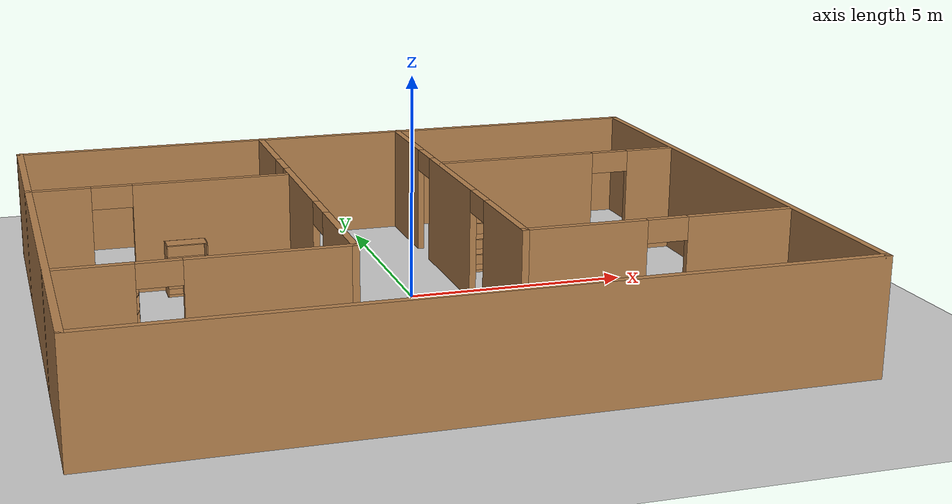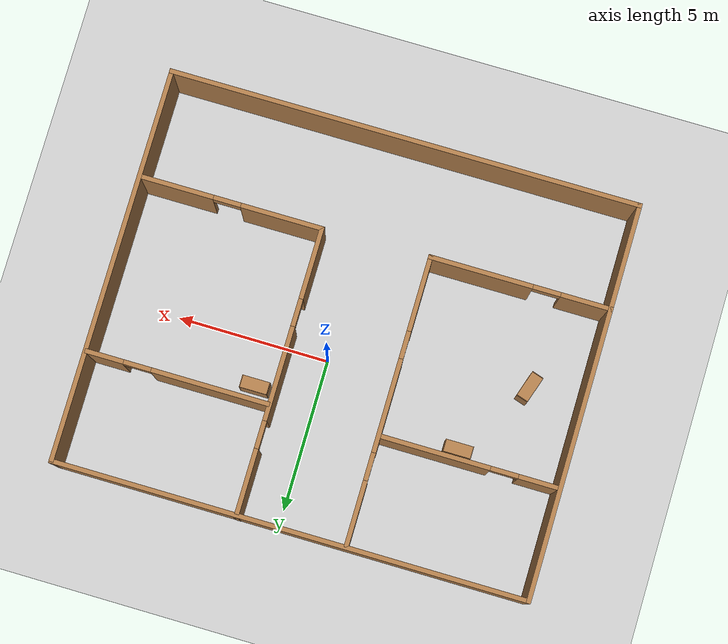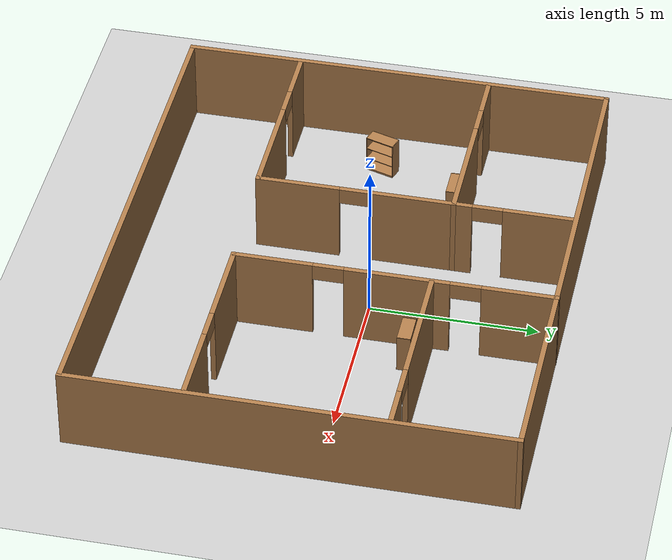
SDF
<sdf version="1.7">
 <world name="default">
  <light name="sun" type="directional">
   <pose>0 0 10 0 -0 0</pose>
   <diffuse>0.8 0.8 0.8 1</diffuse>
   <specular>0.2 0.2 0.2 1</specular>
   <attenuation>
    <range>1000</range>
    <constant>0.9</constant>
    <linear>0.01</linear>
    <quadratic>0.001</quadratic>
   </attenuation>
   <direction>-0.5 0.1 -0.9</direction>
   <spot><inner_angle>0</inner_angle><outer_angle>0</outer_angle><falloff>0</falloff></spot>
  </light>
  <model name="ground_plane">
   <static>1</static>
   <link name="link">
    <collision name="collision">
     <geometry><plane><normal>0 0 1</normal><size>100 100</size></plane></geometry>
     <surface>
      <contact><collide_bitmask>65535</collide_bitmask></contact>
      <friction><ode><mu>100</mu><mu2>50</mu2></ode></friction>
     </surface>
    </collision>
    <visual name="visual">
     <cast_shadows>0</cast_shadows>
     <geometry><plane><normal>0 0 1</normal><size>100 100</size></plane></geometry>
     <material>
      <script><uri>file://media/materials/scripts/gazebo.material</uri><name>Gazebo/Grey</name></script>
     </material>
    </visual>
   </link>
  </model>
  <gravity>0 0 -9.8</gravity>
  <magnetic_field>6e-06 2.3e-05 -4.2e-05</magnetic_field>
  <atmosphere type="adiabatic"/>
  <physics type="ode">
   <max_step_size>0.001</max_step_size>
   <real_time_factor>1</real_time_factor>
   <real_time_update_rate>1000</real_time_update_rate>
  </physics>
  <scene><ambient>0.4 0.4 0.4 1</ambient><background>0.7 0.7 0.7 1</background><shadows>1</shadows></scene>
  <audio><device>default</device></audio>
  <spherical_coordinates>
   <surface_model>EARTH_WGS84</surface_model>
   <latitude_deg>0</latitude_deg>
   <longitude_deg>0</longitude_deg>
   <elevation>0</elevation>
   <heading_deg>0</heading_deg>
  </spherical_coordinates>
  <model name="my_floor">
   <pose>-0.432378 -0.787654 0 0 -0 0</pose>
   <link name="Wall_0">
    <collision name="Wall_0_Collision">
     <geometry><box><size>13 0.15 2.5</size></box></geometry>
     <pose>0 0 1.25 0 -0 0</pose>
    </collision>
    <visual name="Wall_0_Visual">
     <pose>0 0 1.25 0 -0 0</pose>
     <geometry><box><size>13 0.15 2.5</size></box></geometry>
     <material>
      <script><uri>file://media/materials/scripts/gazebo.material</uri><name>Gazebo/Wood</name></script>
      <ambient>1 1 1 1</ambient>
     </material>
     <meta><layer>0</layer></meta>
    </visual>
    <pose>-7.67469 -0.004228 0 0 -0 -1.5708</pose>
   </link>
   <link name="Wall_1">
    <collision name="Wall_1_Collision">
     <geometry><box><size>15.5 0.15 2.5</size></box></geometry>
     <pose>0 0 1.25 0 -0 0</pose>
    </collision>
    <visual name="Wall_1_Visual">
     <pose>0 0 1.25 0 -0 0</pose>
     <geometry><box><size>15.5 0.15 2.5</size></box></geometry>
     <material>
      <script><uri>file://media/materials/scripts/gazebo.material</uri><name>Gazebo/Wood</name></script>
      <ambient>1 1 1 1</ambient>
     </material>
     <meta><layer>0</layer></meta>
    </visual>
    <pose>0.000314 -6.42923 0 0 -0 0</pose>
   </link>
   <link name="Wall_12">
    <pose>1.69462 1.75423 0 0 -0 -1.5708</pose>
    <visual name="Wall_12_Visual_0">
     <pose>-3.63395 0 1.25 0 -0 0</pose>
     <geometry><box><size>2.2321 0.15 2.5</size></box></geometry>
     <material>
      <script><uri>file://media/materials/scripts/gazebo.material</uri><name>Gazebo/Wood</name></script>
      <ambient>1 1 1 1</ambient>
     </material>
     <meta><layer>0</layer></meta>
    </visual>
    <collision name="Wall_12_Collision_0">
     <geometry><box><size>2.2321 0.15 2.5</size></box></geometry>
     <pose>-3.63395 0 1.25 0 -0 0</pose>
    </collision>
    <visual name="Wall_12_Visual_1">
     <pose>-0.079531 0 1.25 0 -0 0</pose>
     <geometry><box><size>3.07673 0.15 2.5</size></box></geometry>
     <material>
      <script><uri>file://media/materials/scripts/gazebo.material</uri><name>Gazebo/Wood</name></script>
      <ambient>1 1 1 1</ambient>
     </material>
     <meta><layer>0</layer></meta>
    </visual>
    <collision name="Wall_12_Collision_1">
     <geometry><box><size>3.07673 0.15 2.5</size></box></geometry>
     <pose>-0.079531 0 1.25 0 -0 0</pose>
    </collision>
    <visual name="Wall_12_Visual_2">
     <pose>3.55442 0 1.25 0 -0 0</pose>
     <geometry><box><size>2.39117 0.15 2.5</size></box></geometry>
     <material>
      <script><uri>file://media/materials/scripts/gazebo.material</uri><name>Gazebo/Wood</name></script>
      <ambient>1 1 1 1</ambient>
     </material>
     <meta><layer>0</layer></meta>
    </visual>
    <collision name="Wall_12_Collision_2">
     <geometry><box><size>2.39117 0.15 2.5</size></box></geometry>
     <pose>3.55442 0 1.25 0 -0 0</pose>
    </collision>
    <visual name="Wall_12_Visual_3">
     <pose>-2.0679 0 2.25 0 -0 0</pose>
     <geometry><box><size>0.9 0.15 0.5</size></box></geometry>
     <material>
      <script><uri>file://media/materials/scripts/gazebo.material</uri><name>Gazebo/Wood</name></script>
      <ambient>1 1 1 1</ambient>
     </material>
     <meta><layer>0</layer></meta>
    </visual>
    <collision name="Wall_12_Collision_3">
     <geometry><box><size>0.9 0.15 0.5</size></box></geometry>
     <pose>-2.0679 0 2.25 0 -0 0</pose>
    </collision>
    <visual name="Wall_12_Visual_4">
     <pose>1.90883 0 2.25 0 -0 0</pose>
     <geometry><box><size>0.9 0.15 0.5</size></box></geometry>
     <material>
      <script><uri>file://media/materials/scripts/gazebo.material</uri><name>Gazebo/Wood</name></script>
      <ambient>1 1 1 1</ambient>
     </material>
     <meta><layer>0</layer></meta>
    </visual>
    <collision name="Wall_12_Collision_4">
     <geometry><box><size>0.9 0.15 0.5</size></box></geometry>
     <pose>1.90883 0 2.25 0 -0 0</pose>
    </collision>
   </link>
   <link name="Wall_13">
    <pose>4.61962 -2.92077 0 0 -0 0</pose>
    <visual name="Wall_13_Visual_0">
     <pose>-1.63791 0 1.25 0 -0 0</pose>
     <geometry><box><size>2.72418 0.15 2.5</size></box></geometry>
     <material>
      <script><uri>file://media/materials/scripts/gazebo.material</uri><name>Gazebo/Wood</name></script>
      <ambient>1 1 1 1</ambient>
     </material>
     <meta><layer>0</layer></meta>
    </visual>
    <collision name="Wall_13_Collision_0">
     <geometry><box><size>2.72418 0.15 2.5</size></box></geometry>
     <pose>-1.63791 0 1.25 0 -0 0</pose>
    </collision>
    <visual name="Wall_13_Visual_1">
     <pose>1.81209 0 1.25 0 -0 0</pose>
     <geometry><box><size>2.37582 0.15 2.5</size></box></geometry>
     <material>
      <script><uri>file://media/materials/scripts/gazebo.material</uri><name>Gazebo/Wood</name></script>
      <ambient>1 1 1 1</ambient>
     </material>
     <meta><layer>0</layer></meta>
    </visual>
    <collision name="Wall_13_Collision_1">
     <geometry><box><size>2.37582 0.15 2.5</size></box></geometry>
     <pose>1.81209 0 1.25 0 -0 0</pose>
    </collision>
    <visual name="Wall_13_Visual_2">
     <pose>0.174177 0 2.25 0 -0 0</pose>
     <geometry><box><size>0.9 0.15 0.5</size></box></geometry>
     <material>
      <script><uri>file://media/materials/scripts/gazebo.material</uri><name>Gazebo/Wood</name></script>
      <ambient>1 1 1 1</ambient>
     </material>
     <meta><layer>0</layer></meta>
    </visual>
    <collision name="Wall_13_Collision_2">
     <geometry><box><size>0.9 0.15 0.5</size></box></geometry>
     <pose>0.174177 0 2.25 0 -0 0</pose>
    </collision>
   </link>
   <link name="Wall_15">
    <pose>4.69036 2.84324 0 0 -0 0</pose>
    <visual name="Wall_15_Visual_0">
     <pose>-1.07677 0 1.25 0 -0 0</pose>
     <geometry><box><size>3.84645 0.15 2.5</size></box></geometry>
     <material>
      <script><uri>file://media/materials/scripts/gazebo.material</uri><name>Gazebo/Wood</name></script>
      <ambient>1 1 1 1</ambient>
     </material>
     <meta><layer>0</layer></meta>
    </visual>
    <collision name="Wall_15_Collision_0">
     <geometry><box><size>3.84645 0.15 2.5</size></box></geometry>
     <pose>-1.07677 0 1.25 0 -0 0</pose>
    </collision>
    <visual name="Wall_15_Visual_1">
     <pose>2.37323 0 1.25 0 -0 0</pose>
     <geometry><box><size>1.25355 0.15 2.5</size></box></geometry>
     <material>
      <script><uri>file://media/materials/scripts/gazebo.material</uri><name>Gazebo/Wood</name></script>
      <ambient>1 1 1 1</ambient>
     </material>
     <meta><layer>0</layer></meta>
    </visual>
    <collision name="Wall_15_Collision_1">
     <geometry><box><size>1.25355 0.15 2.5</size></box></geometry>
     <pose>2.37323 0 1.25 0 -0 0</pose>
    </collision>
    <visual name="Wall_15_Visual_2">
     <pose>1.29645 0 2.25 0 -0 0</pose>
     <geometry><box><size>0.9 0.15 0.5</size></box></geometry>
     <material>
      <script><uri>file://media/materials/scripts/gazebo.material</uri><name>Gazebo/Wood</name></script>
      <ambient>1 1 1 1</ambient>
     </material>
     <meta><layer>0</layer></meta>
    </visual>
    <collision name="Wall_15_Collision_2">
     <geometry><box><size>0.9 0.15 0.5</size></box></geometry>
     <pose>1.29645 0 2.25 0 -0 0</pose>
    </collision>
   </link>
   <link name="Wall_2">
    <collision name="Wall_2_Collision">
     <geometry><box><size>13 0.15 2.5</size></box></geometry>
     <pose>0 0 1.25 0 -0 0</pose>
    </collision>
    <visual name="Wall_2_Visual">
     <pose>0 0 1.25 0 -0 0</pose>
     <geometry><box><size>13 0.15 2.5</size></box></geometry>
     <material>
      <script><uri>file://media/materials/scripts/gazebo.material</uri><name>Gazebo/Wood</name></script>
      <ambient>1 1 1 1</ambient>
     </material>
     <meta><layer>0</layer></meta>
    </visual>
    <pose>7.67531 -0.004228 0 0 -0 1.5708</pose>
   </link>
   <link name="Wall_3">
    <collision name="Wall_3_Collision">
     <geometry><box><size>15.5 0.15 2.5</size></box></geometry>
     <pose>0 0 1.25 0 -0 0</pose>
    </collision>
    <visual name="Wall_3_Visual">
     <pose>0 0 1.25 0 -0 0</pose>
     <geometry><box><size>15.5 0.15 2.5</size></box></geometry>
     <material>
      <script><uri>file://media/materials/scripts/gazebo.material</uri><name>Gazebo/Wood</name></script>
      <ambient>1 1 1 1</ambient>
     </material>
     <meta><layer>0</layer></meta>
    </visual>
    <pose>0.000314 6.42077 0 0 -0 3.14159</pose>
   </link>
   <link name="Wall_5">
    <pose>-4.75031 2.82197 0 0 -0 0</pose>
    <visual name="Wall_5_Visual_0">
     <pose>-2.29094 0 1.25 0 -0 0</pose>
     <geometry><box><size>1.41812 0.15 2.5</size></box></geometry>
     <material>
      <script><uri>file://media/materials/scripts/gazebo.material</uri><name>Gazebo/Wood</name></script>
      <ambient>1 1 1 1</ambient>
     </material>
     <meta><layer>0</layer></meta>
    </visual>
    <collision name="Wall_5_Collision_0">
     <geometry><box><size>1.41812 0.15 2.5</size></box></geometry>
     <pose>-2.29094 0 1.25 0 -0 0</pose>
    </collision>
    <visual name="Wall_5_Visual_1">
     <pose>1.15906 0 1.25 0 -0 0</pose>
     <geometry><box><size>3.68188 0.15 2.5</size></box></geometry>
     <material>
      <script><uri>file://media/materials/scripts/gazebo.material</uri><name>Gazebo/Wood</name></script>
      <ambient>1 1 1 1</ambient>
     </material>
     <meta><layer>0</layer></meta>
    </visual>
    <collision name="Wall_5_Collision_1">
     <geometry><box><size>3.68188 0.15 2.5</size></box></geometry>
     <pose>1.15906 0 1.25 0 -0 0</pose>
    </collision>
    <visual name="Wall_5_Visual_2">
     <pose>-1.13188 0 2.25 0 -0 0</pose>
     <geometry><box><size>0.9 0.15 0.5</size></box></geometry>
     <material>
      <script><uri>file://media/materials/scripts/gazebo.material</uri><name>Gazebo/Wood</name></script>
      <ambient>1 1 1 1</ambient>
     </material>
     <meta><layer>0</layer></meta>
    </visual>
    <collision name="Wall_5_Collision_2">
     <geometry><box><size>0.9 0.15 0.5</size></box></geometry>
     <pose>-1.13188 0 2.25 0 -0 0</pose>
    </collision>
   </link>
   <link name="Wall_7">
    <pose>-4.75031 -3.01096 0 0 -0 0</pose>
    <visual name="Wall_7_Visual_0">
     <pose>-2.15328 0 1.25 0 -0 0</pose>
     <geometry><box><size>1.69343 0.15 2.5</size></box></geometry>
     <material>
      <script><uri>file://media/materials/scripts/gazebo.material</uri><name>Gazebo/Wood</name></script>
      <ambient>1 1 1 1</ambient>
     </material>
     <meta><layer>0</layer></meta>
    </visual>
    <collision name="Wall_7_Collision_0">
     <geometry><box><size>1.69343 0.15 2.5</size></box></geometry>
     <pose>-2.15328 0 1.25 0 -0 0</pose>
    </collision>
    <visual name="Wall_7_Visual_1">
     <pose>1.29672 0 1.25 0 -0 0</pose>
     <geometry><box><size>3.40657 0.15 2.5</size></box></geometry>
     <material>
      <script><uri>file://media/materials/scripts/gazebo.material</uri><name>Gazebo/Wood</name></script>
      <ambient>1 1 1 1</ambient>
     </material>
     <meta><layer>0</layer></meta>
    </visual>
    <collision name="Wall_7_Collision_1">
     <geometry><box><size>3.40657 0.15 2.5</size></box></geometry>
     <pose>1.29672 0 1.25 0 -0 0</pose>
    </collision>
    <visual name="Wall_7_Visual_2">
     <pose>-0.856569 0 2.25 0 -0 0</pose>
     <geometry><box><size>0.9 0.15 0.5</size></box></geometry>
     <material>
      <script><uri>file://media/materials/scripts/gazebo.material</uri><name>Gazebo/Wood</name></script>
      <ambient>1 1 1 1</ambient>
     </material>
     <meta><layer>0</layer></meta>
    </visual>
    <collision name="Wall_7_Collision_2">
     <geometry><box><size>0.9 0.15 0.5</size></box></geometry>
     <pose>-0.856569 0 2.25 0 -0 0</pose>
    </collision>
   </link>
   <link name="Wall_8">
    <pose>-1.82532 1.66404 0 0 -0 1.5708</pose>
    <visual name="Wall_8_Visual_0">
     <pose>-3.49403 0 1.25 0 -0 0</pose>
     <geometry><box><size>2.51195 0.15 2.5</size></box></geometry>
     <material>
      <script><uri>file://media/materials/scripts/gazebo.material</uri><name>Gazebo/Wood</name></script>
      <ambient>1 1 1 1</ambient>
     </material>
     <meta><layer>0</layer></meta>
    </visual>
    <collision name="Wall_8_Collision_0">
     <geometry><box><size>2.51195 0.15 2.5</size></box></geometry>
     <pose>-3.49403 0 1.25 0 -0 0</pose>
    </collision>
    <visual name="Wall_8_Visual_1">
     <pose>0.185017 0 1.25 0 -0 0</pose>
     <geometry><box><size>3.04614 0.15 2.5</size></box></geometry>
     <material>
      <script><uri>file://media/materials/scripts/gazebo.material</uri><name>Gazebo/Wood</name></script>
      <ambient>1 1 1 1</ambient>
     </material>
     <meta><layer>0</layer></meta>
    </visual>
    <collision name="Wall_8_Collision_1">
     <geometry><box><size>3.04614 0.15 2.5</size></box></geometry>
     <pose>0.185017 0 1.25 0 -0 0</pose>
    </collision>
    <visual name="Wall_8_Visual_2">
     <pose>3.67904 0 1.25 0 -0 0</pose>
     <geometry><box><size>2.14191 0.15 2.5</size></box></geometry>
     <material>
      <script><uri>file://media/materials/scripts/gazebo.material</uri><name>Gazebo/Wood</name></script>
      <ambient>1 1 1 1</ambient>
     </material>
     <meta><layer>0</layer></meta>
    </visual>
    <collision name="Wall_8_Collision_2">
     <geometry><box><size>2.14191 0.15 2.5</size></box></geometry>
     <pose>3.67904 0 1.25 0 -0 0</pose>
    </collision>
    <visual name="Wall_8_Visual_3">
     <pose>-1.78805 0 2.25 0 -0 0</pose>
     <geometry><box><size>0.9 0.15 0.5</size></box></geometry>
     <material>
      <script><uri>file://media/materials/scripts/gazebo.material</uri><name>Gazebo/Wood</name></script>
      <ambient>1 1 1 1</ambient>
     </material>
     <meta><layer>0</layer></meta>
    </visual>
    <collision name="Wall_8_Collision_3">
     <geometry><box><size>0.9 0.15 0.5</size></box></geometry>
     <pose>-1.78805 0 2.25 0 -0 0</pose>
    </collision>
    <visual name="Wall_8_Visual_4">
     <pose>2.15809 0 2.25 0 -0 0</pose>
     <geometry><box><size>0.9 0.15 0.5</size></box></geometry>
     <material>
      <script><uri>file://media/materials/scripts/gazebo.material</uri><name>Gazebo/Wood</name></script>
      <ambient>1 1 1 1</ambient>
     </material>
     <meta><layer>0</layer></meta>
    </visual>
    <collision name="Wall_8_Collision_4">
     <geometry><box><size>0.9 0.15 0.5</size></box></geometry>
     <pose>2.15809 0 2.25 0 -0 0</pose>
    </collision>
   </link>
   <static>1</static>
  </model>
  <model name="bookshelf">
   <static>1</static>
   <link name="link">
    <inertial><mass>1</mass></inertial>
    <collision name="back">
     <pose>0 0.005 0.6 0 -0 0</pose>
     <geometry><box><size>0.9 0.01 1.2</size></box></geometry>
    </collision>
    <visual name="visual1">
     <pose>0 0.005 0.6 0 -0 0</pose>
     <geometry><box><size>0.9 0.01 1.2</size></box></geometry>
     <material>
      <script><uri>file://media/materials/scripts/gazebo.material</uri><name>Gazebo/Wood</name></script>
     </material>
    </visual>
    <collision name="left_side">
     <pose>0.45 -0.195 0.6 0 -0 0</pose>
     <geometry><box><size>0.02 0.4 1.2</size></box></geometry>
    </collision>
    <visual name="visual2">
     <pose>0.45 -0.195 0.6 0 -0 0</pose>
     <geometry><box><size>0.02 0.4 1.2</size></box></geometry>
     <material>
      <script><uri>file://media/materials/scripts/gazebo.material</uri><name>Gazebo/Wood</name></script>
     </material>
    </visual>
    <collision name="right_side">
     <pose>-0.45 -0.195 0.6 0 -0 0</pose>
     <geometry><box><size>0.02 0.4 1.2</size></box></geometry>
    </collision>
    <visual name="visual3">
     <pose>-0.45 -0.195 0.6 0 -0 0</pose>
     <geometry><box><size>0.02 0.4 1.2</size></box></geometry>
     <material>
      <script><uri>file://media/materials/scripts/gazebo.material</uri><name>Gazebo/Wood</name></script>
     </material>
    </visual>
    <collision name="bottom">
     <pose>0 -0.195 0.03 0 -0 0</pose>
     <geometry><box><size>0.88 0.4 0.06</size></box></geometry>
    </collision>
    <visual name="visual4">
     <pose>0 -0.195 0.03 0 -0 0</pose>
     <geometry><box><size>0.88 0.4 0.06</size></box></geometry>
     <material>
      <script><uri>file://media/materials/scripts/gazebo.material</uri><name>Gazebo/Wood</name></script>
     </material>
    </visual>
    <collision name="top">
     <pose>0 -0.195 1.19 0 -0 0</pose>
     <geometry><box><size>0.88 0.4 0.02</size></box></geometry>
    </collision>
    <visual name="visual5">
     <pose>0 -0.195 1.19 0 -0 0</pose>
     <geometry><box><size>0.88 0.4 0.02</size></box></geometry>
     <material>
      <script><uri>file://media/materials/scripts/gazebo.material</uri><name>Gazebo/Wood</name></script>
     </material>
    </visual>
    <collision name="low_shelf">
     <pose>0 -0.195 0.43 0 -0 0</pose>
     <geometry><box><size>0.88 0.4 0.02</size></box></geometry>
    </collision>
    <visual name="visual6">
     <pose>0 -0.195 0.43 0 -0 0</pose>
     <geometry><box><size>0.88 0.4 0.02</size></box></geometry>
     <material>
      <script><uri>file://media/materials/scripts/gazebo.material</uri><name>Gazebo/Wood</name></script>
     </material>
    </visual>
    <collision name="high_shelf">
     <pose>0 -0.195 0.8 0 -0 0</pose>
     <geometry><box><size>0.88 0.4 0.02</size></box></geometry>
    </collision>
    <visual name="visual7">
     <pose>0 -0.195 0.8 0 -0 0</pose>
     <geometry><box><size>0.88 0.4 0.02</size></box></geometry>
     <material>
      <script><uri>file://media/materials/scripts/gazebo.material</uri><name>Gazebo/Wood</name></script>
     </material>
    </visual>
   </link>
   <pose>1.96752 1.67958 0 0 -0 0</pose>
  </model>
  <model name="bookshelf_0">
   <static>1</static>
   <link name="link">
    <inertial><mass>1</mass></inertial>
    <collision name="back">
     <pose>0 0.005 0.6 0 -0 0</pose>
     <geometry><box><size>0.9 0.01 1.2</size></box></geometry>
    </collision>
    <visual name="visual1">
     <pose>0 0.005 0.6 0 -0 0</pose>
     <geometry><box><size>0.9 0.01 1.2</size></box></geometry>
     <material>
      <script><uri>file://media/materials/scripts/gazebo.material</uri><name>Gazebo/Wood</name></script>
     </material>
    </visual>
    <collision name="left_side">
     <pose>0.45 -0.195 0.6 0 -0 0</pose>
     <geometry><box><size>0.02 0.4 1.2</size></box></geometry>
    </collision>
    <visual name="visual2">
     <pose>0.45 -0.195 0.6 0 -0 0</pose>
     <geometry><box><size>0.02 0.4 1.2</size></box></geometry>
     <material>
      <script><uri>file://media/materials/scripts/gazebo.material</uri><name>Gazebo/Wood</name></script>
     </material>
    </visual>
    <collision name="right_side">
     <pose>-0.45 -0.195 0.6 0 -0 0</pose>
     <geometry><box><size>0.02 0.4 1.2</size></box></geometry>
    </collision>
    <visual name="visual3">
     <pose>-0.45 -0.195 0.6 0 -0 0</pose>
     <geometry><box><size>0.02 0.4 1.2</size></box></geometry>
     <material>
      <script><uri>file://media/materials/scripts/gazebo.material</uri><name>Gazebo/Wood</name></script>
     </material>
    </visual>
    <collision name="bottom">
     <pose>0 -0.195 0.03 0 -0 0</pose>
     <geometry><box><size>0.88 0.4 0.06</size></box></geometry>
    </collision>
    <visual name="visual4">
     <pose>0 -0.195 0.03 0 -0 0</pose>
     <geometry><box><size>0.88 0.4 0.06</size></box></geometry>
     <material>
      <script><uri>file://media/materials/scripts/gazebo.material</uri><name>Gazebo/Wood</name></script>
     </material>
    </visual>
    <collision name="top">
     <pose>0 -0.195 1.19 0 -0 0</pose>
     <geometry><box><size>0.88 0.4 0.02</size></box></geometry>
    </collision>
    <visual name="visual5">
     <pose>0 -0.195 1.19 0 -0 0</pose>
     <geometry><box><size>0.88 0.4 0.02</size></box></geometry>
     <material>
      <script><uri>file://media/materials/scripts/gazebo.material</uri><name>Gazebo/Wood</name></script>
     </material>
    </visual>
    <collision name="low_shelf">
     <pose>0 -0.195 0.43 0 -0 0</pose>
     <geometry><box><size>0.88 0.4 0.02</size></box></geometry>
    </collision>
    <visual name="visual6">
     <pose>0 -0.195 0.43 0 -0 0</pose>
     <geometry><box><size>0.88 0.4 0.02</size></box></geometry>
     <material>
      <script><uri>file://media/materials/scripts/gazebo.material</uri><name>Gazebo/Wood</name></script>
     </material>
    </visual>
    <collision name="high_shelf">
     <pose>0 -0.195 0.8 0 -0 0</pose>
     <geometry><box><size>0.88 0.4 0.02</size></box></geometry>
    </collision>
    <visual name="visual7">
     <pose>0 -0.195 0.8 0 -0 0</pose>
     <geometry><box><size>0.88 0.4 0.02</size></box></geometry>
     <material>
      <script><uri>file://media/materials/scripts/gazebo.material</uri><name>Gazebo/Wood</name></script>
     </material>
    </visual>
   </link>
   <pose>-4.7793 1.82538 0 0 -0 0</pose>
  </model>
  <model name="bookshelf_1">
   <static>1</static>
   <link name="link">
    <inertial><mass>1</mass></inertial>
    <collision name="back">
     <pose>0 0.005 0.6 0 -0 0</pose>
     <geometry><box><size>0.9 0.01 1.2</size></box></geometry>
    </collision>
    <visual name="visual1">
     <pose>0 0.005 0.6 0 -0 0</pose>
     <geometry><box><size>0.9 0.01 1.2</size></box></geometry>
     <material>
      <script><uri>file://media/materials/scripts/gazebo.material</uri><name>Gazebo/Wood</name></script>
     </material>
    </visual>
    <collision name="left_side">
     <pose>0.45 -0.195 0.6 0 -0 0</pose>
     <geometry><box><size>0.02 0.4 1.2</size></box></geometry>
    </collision>
    <visual name="visual2">
     <pose>0.45 -0.195 0.6 0 -0 0</pose>
     <geometry><box><size>0.02 0.4 1.2</size></box></geometry>
     <material>
      <script><uri>file://media/materials/scripts/gazebo.material</uri><name>Gazebo/Wood</name></script>
     </material>
    </visual>
    <collision name="right_side">
     <pose>-0.45 -0.195 0.6 0 -0 0</pose>
     <geometry><box><size>0.02 0.4 1.2</size></box></geometry>
    </collision>
    <visual name="visual3">
     <pose>-0.45 -0.195 0.6 0 -0 0</pose>
     <geometry><box><size>0.02 0.4 1.2</size></box></geometry>
     <material>
      <script><uri>file://media/materials/scripts/gazebo.material</uri><name>Gazebo/Wood</name></script>
     </material>
    </visual>
    <collision name="bottom">
     <pose>0 -0.195 0.03 0 -0 0</pose>
     <geometry><box><size>0.88 0.4 0.06</size></box></geometry>
    </collision>
    <visual name="visual4">
     <pose>0 -0.195 0.03 0 -0 0</pose>
     <geometry><box><size>0.88 0.4 0.06</size></box></geometry>
     <material>
      <script><uri>file://media/materials/scripts/gazebo.material</uri><name>Gazebo/Wood</name></script>
     </material>
    </visual>
    <collision name="top">
     <pose>0 -0.195 1.19 0 -0 0</pose>
     <geometry><box><size>0.88 0.4 0.02</size></box></geometry>
    </collision>
    <visual name="visual5">
     <pose>0 -0.195 1.19 0 -0 0</pose>
     <geometry><box><size>0.88 0.4 0.02</size></box></geometry>
     <material>
      <script><uri>file://media/materials/scripts/gazebo.material</uri><name>Gazebo/Wood</name></script>
     </material>
    </visual>
    <collision name="low_shelf">
     <pose>0 -0.195 0.43 0 -0 0</pose>
     <geometry><box><size>0.88 0.4 0.02</size></box></geometry>
    </collision>
    <visual name="visual6">
     <pose>0 -0.195 0.43 0 -0 0</pose>
     <geometry><box><size>0.88 0.4 0.02</size></box></geometry>
     <material>
      <script><uri>file://media/materials/scripts/gazebo.material</uri><name>Gazebo/Wood</name></script>
     </material>
    </visual>
    <collision name="high_shelf">
     <pose>0 -0.195 0.8 0 -0 0</pose>
     <geometry><box><size>0.88 0.4 0.02</size></box></geometry>
    </collision>
    <visual name="visual7">
     <pose>0 -0.195 0.8 0 -0 0</pose>
     <geometry><box><size>0.88 0.4 0.02</size></box></geometry>
     <material>
      <script><uri>file://media/materials/scripts/gazebo.material</uri><name>Gazebo/Wood</name></script>
     </material>
    </visual>
   </link>
   <pose>-6.60502 -0.846064 0 0 -0 1.26054</pose>
  </model>
 </world>
</sdf>
